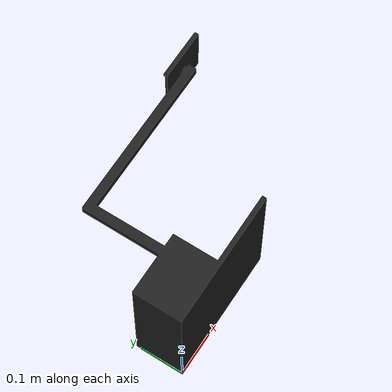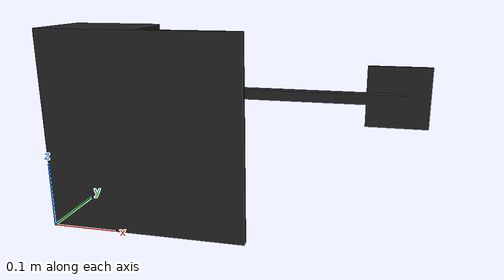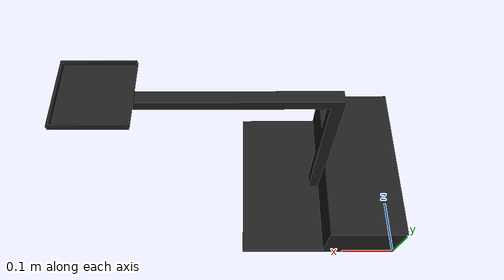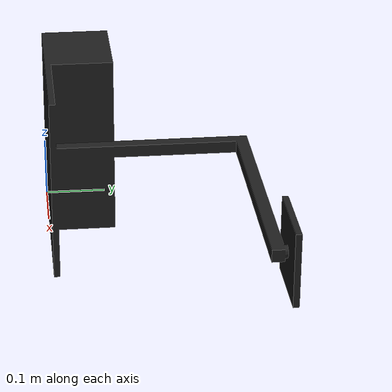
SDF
<?xml version="1.0" ?>
<sdf version="1.5">
  <model name="berry_stand_three">
    <static>true</static>
    <link name="link">

	<inertial>
                <pose>0 0 0 0 0 0</pose>
                <inertia>
                    <ixx>0.001</ixx>
                    <ixy>0</ixy>
                    <ixz>0</ixz>
                    <iyy>0.001</iyy>
                    <iyz>0</iyz>
                    <izz>0.001</izz>
                </inertia>
                <mass>3</mass>
            </inertial>

	<collision name="collision">
        <geometry>
          <mesh>
            <uri>model://berry_stand_three/meshes/berry_stand_three.STL</uri>
            <scale>0.001 0.001 0.001</scale>
          </mesh>
        </geometry>
        <surface>
          <friction>
            <ode>
              <mu>50</mu>
              <mu2>100</mu2>
            </ode>
          </friction>
        </surface>
      </collision>
      <visual name="visual">
        <cast_shadows>false</cast_shadows>
        <geometry>
          <mesh>
            <uri>model://berry_stand_three/meshes/berry_stand_three.STL</uri>
            <scale>0.001 0.001 0.001</scale>
          </mesh>
        </geometry>
        <material>
          <script>
            <uri>file://media/materials/scripts/gazebo.material</uri>
            <name>Gazebo/Black</name>
          </script>
        </material>
      </visual>
    </link>
  </model>
</sdf>
